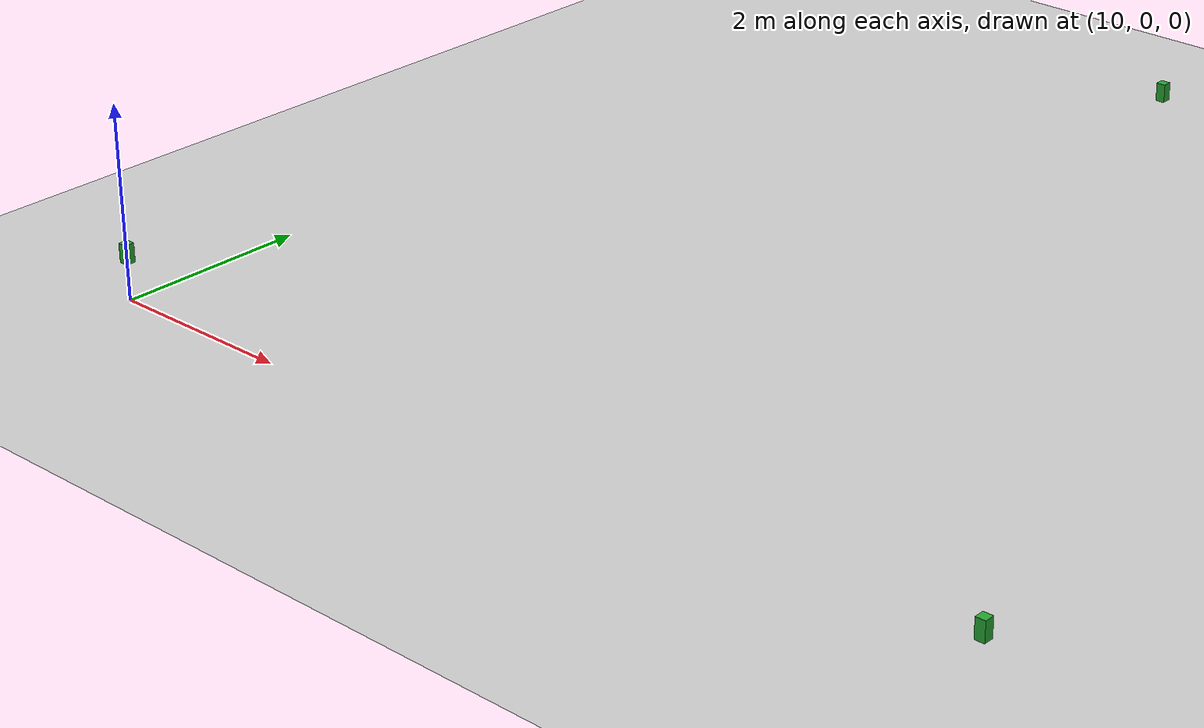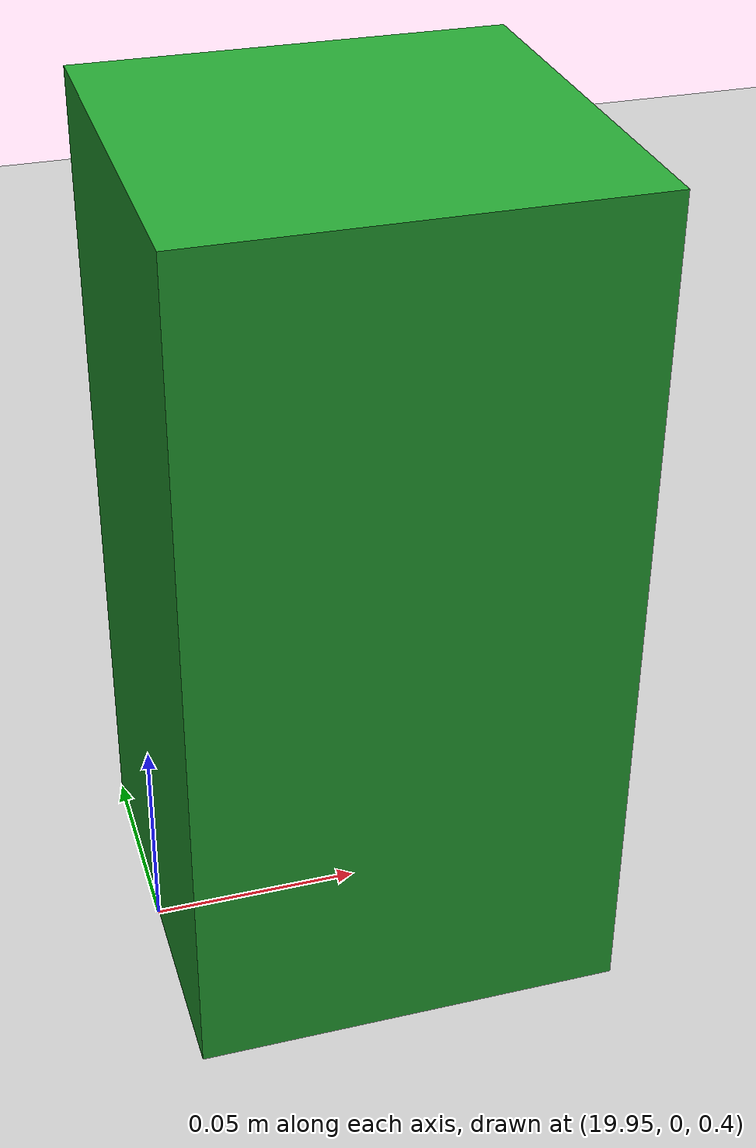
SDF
<?xml version="1.0" ?>
<sdf version="1.5">
  <world name="default">
    <!-- A global light source -->
    <include>
      <uri>model://sun</uri>
    </include>
    <!-- A ground plane -->
    <include>
      <uri>model://ground_plane</uri>
    </include>
    <include>
      <uri>model://asphalt_plane</uri>
    </include>
    <physics name='default_physics' default='0' type='ode'>
      <gravity>0 0 -9.8066</gravity>
      <ode>
        <solver>
          <type>quick</type>
          <iters>10</iters>
          <sor>1.3</sor>
          <use_dynamic_moi_rescaling>0</use_dynamic_moi_rescaling>
        </solver>
        <constraints>
          <cfm>0</cfm>
          <erp>0.2</erp>
          <contact_max_correcting_vel>100</contact_max_correcting_vel>
          <contact_surface_layer>0.001</contact_surface_layer>
        </constraints>
      </ode>
      <max_step_size>0.004</max_step_size>
      <real_time_factor>1</real_time_factor>
      <real_time_update_rate>250</real_time_update_rate>
      <magnetic_field>6.0e-6 2.3e-5 -4.2e-5</magnetic_field>
    </physics>

<model name="node_one">
      <pose>10 0 0.5 0 0 0</pose>
      <link name="link">
        <collision name="collision">
          <geometry>
            <box>
              <size>0.1 0.1 0.2</size>
            </box>
          </geometry>
        </collision>

        <visual name="visual">
          <geometry>
            <box>
              <size>0.1 0.1 0.2</size>
            </box>
          </geometry>
          <material>
            <script>
              <name>Gazebo/Green</name>
            </script>
          </material>
        </visual>
      </link>

    </model>
    <model name="node_two">
      <pose>20 0 0.5 0 0 0</pose>
      <link name="link">
        <collision name="collision">
          <geometry>
            <box>
              <size>0.1 0.1 0.2</size>
            </box>
          </geometry>
        </collision>

        <visual name="visual">
          <geometry>
            <box>
              <size>0.1 0.1 0.2</size>
            </box>
          </geometry>
          <material>
            <script>
              <name>Gazebo/Green</name>
            </script>
          </material>
        </visual>
      </link>

    </model>
    <model name="node_three">
      <pose>15 10 0.5 0 0 0</pose>
      <link name="link">
        <collision name="collision">
          <geometry>
            <box>
              <size>0.1 0.1 0.2</size>
            </box>
          </geometry>
        </collision>

        <visual name="visual">
          <geometry>
            <box>
              <size>0.1 0.1 0.2</size>
            </box>
          </geometry>
          <material>
            <script>
              <name>Gazebo/Green</name>
            </script>
          </material>
        </visual>
      </link>

    </model>
  </world>
</sdf>
